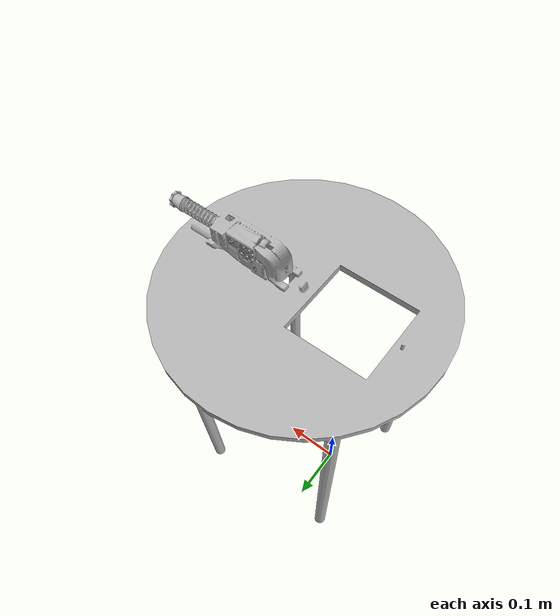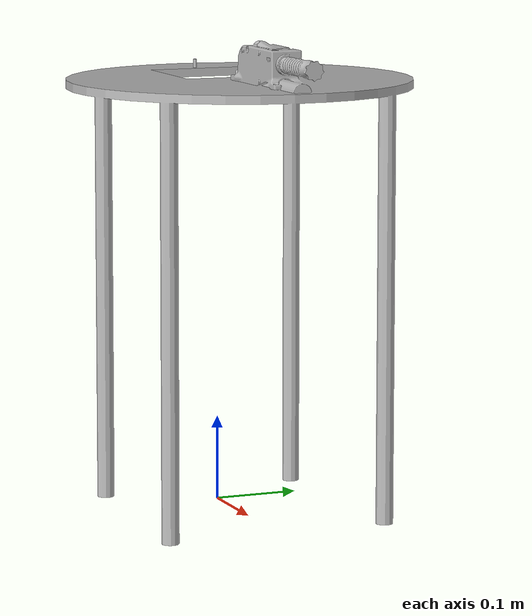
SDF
<sdf version="1.5">
    <model name="plate_with_muscle">
        <link name="plate">
            <pose>0 0 0 0 0 0</pose>
            <inertial>
                <pose>0 0 0 0 0 0</pose>
                <mass>100.0</mass>
                <inertia>
                    <ixx>10.0</ixx>
                    <ixy>0.0</ixy>
                    <ixz>0.0</ixz>
                    <iyy>10.0</iyy>
                    <iyz>0.0</iyz>
                    <izz>10.0</izz>
                </inertia>
            </inertial>
            <collision name="plate_collision">
                <pose>0 0 0 0 -0 0</pose>
                <geometry>
                    <mesh>
                        <scale>1 1 1</scale>
                        <uri>model://plate_with_muscle/meshes/collision/COL_plate.STL</uri>
                    </mesh>
                </geometry>
            </collision>
            <visual name="plate_visual">
                <pose>0 0 0 0 -0 0</pose>
                <geometry>
                    <mesh>
                        <scale>1 1 1</scale>
                        <uri>model://plate_with_muscle/meshes/visual/VIS_plate.STL</uri>
                    </mesh>
                </geometry>
            </visual>
        </link>

        <plugin filename="libroboySim.so" name="roboySim">
            <myoMuscle name="motor0">
                <link name="plate">
                    <viaPoint type="FIXPOINT">0.072174 0.000030 0.512747</viaPoint>
                    <viaPoint type="FIXPOINT">-0.068853 -0.000565 0.516309</viaPoint>
                </link>
            </myoMuscle>
        </plugin>
    </model>
</sdf>
